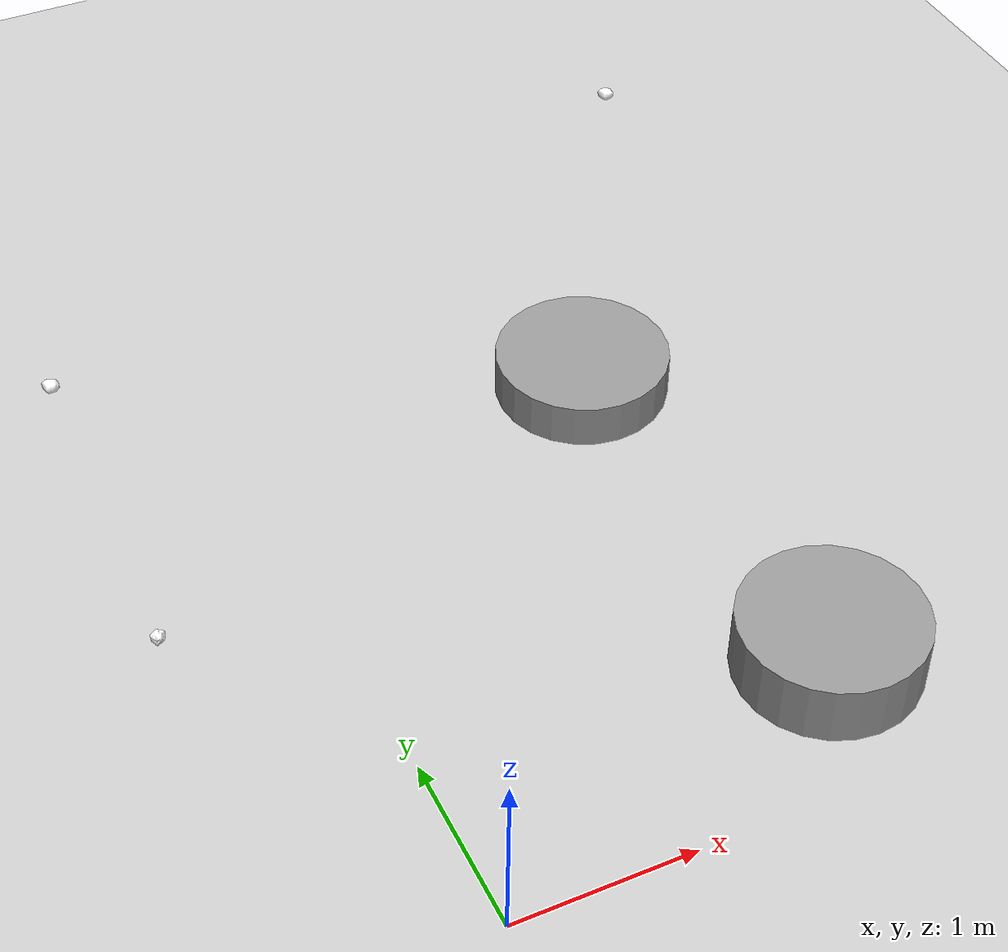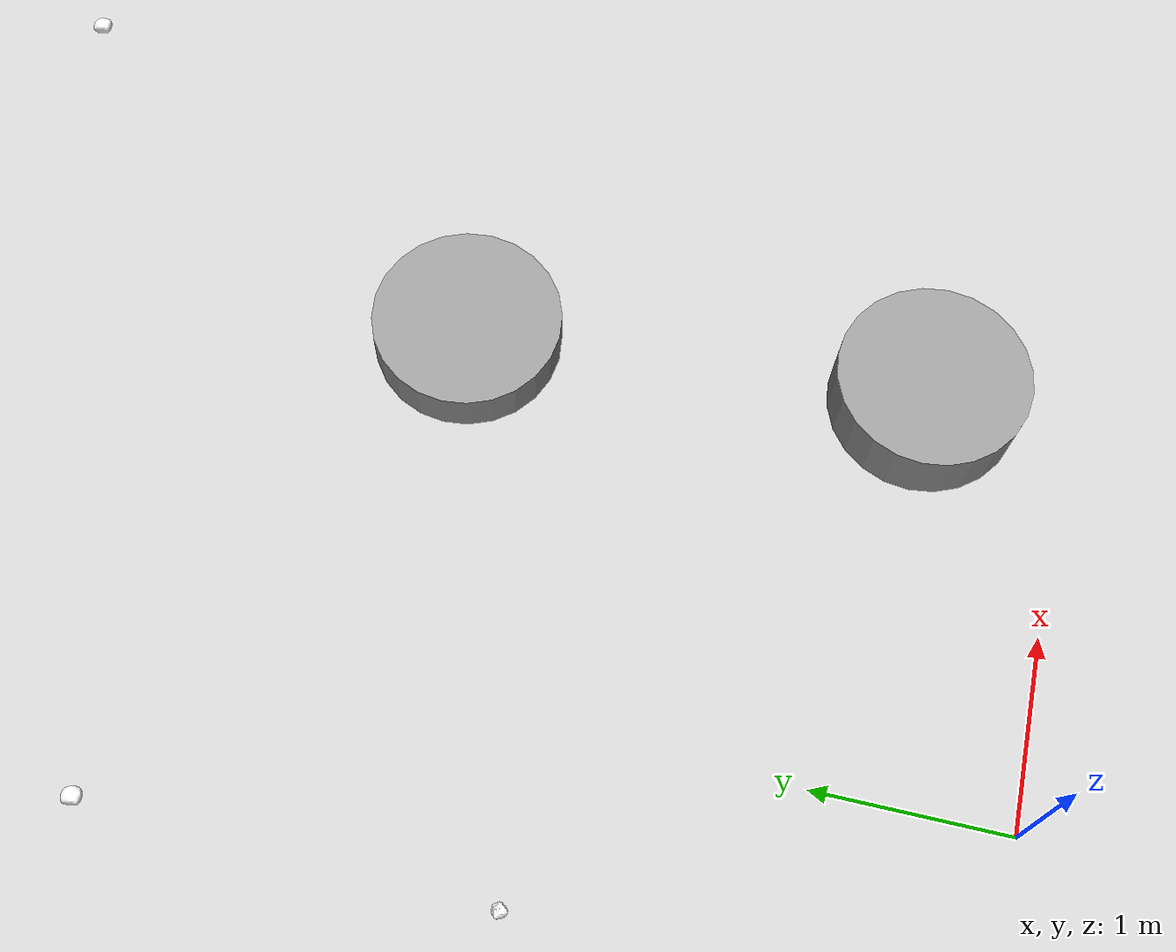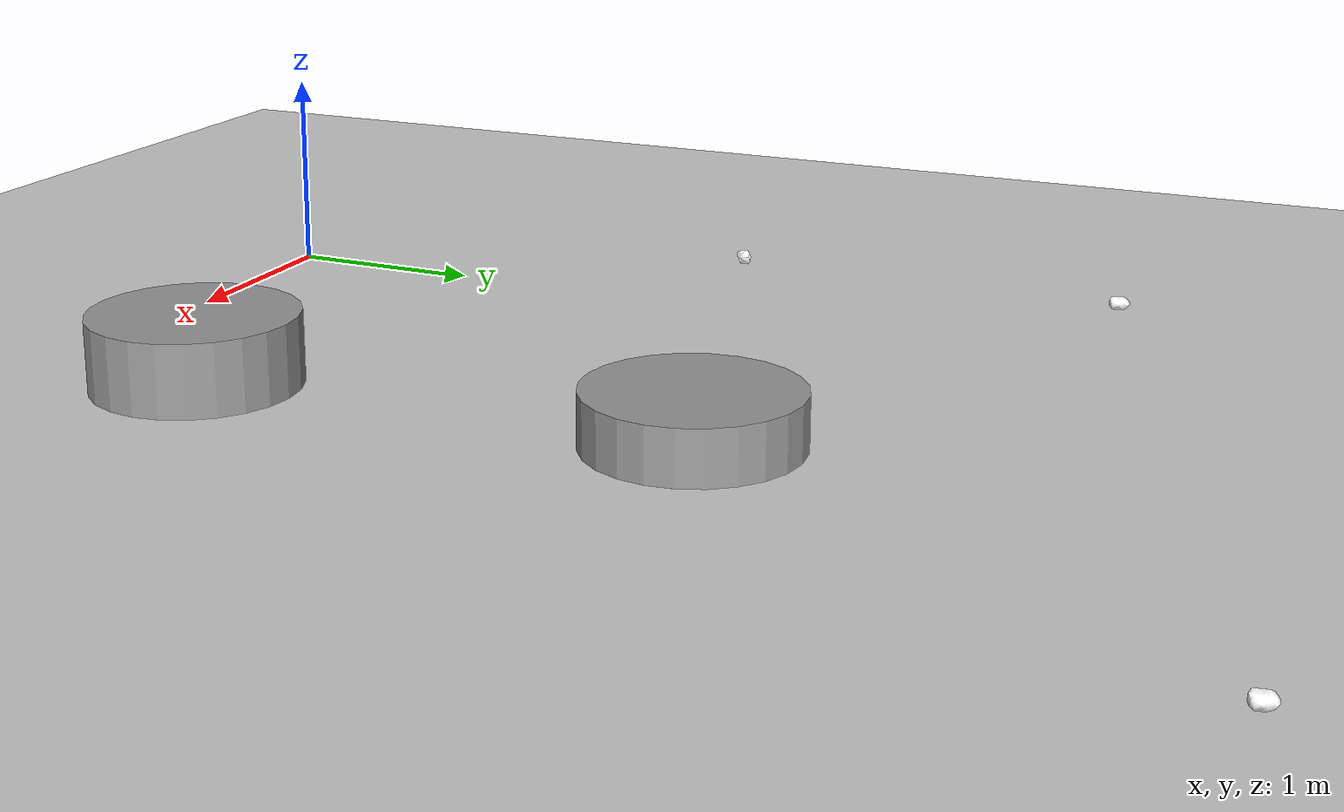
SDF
<sdf version="1.7">
 <world name="default">
  <model name="ground_plane">
   <static>1</static>
   <link name="link">
    <collision name="collision">
     <geometry><plane><normal>0 0 1</normal><size>100 100</size></plane></geometry>
     <surface><friction><ode><mu>100</mu><mu2>50</mu2></ode></friction></surface>
    </collision>
    <visual name="visual">
     <cast_shadows>0</cast_shadows>
     <geometry><plane><normal>0 0 1</normal><size>100 100</size></plane></geometry>
     <material>
      <script><uri>file://media/materials/scripts/gazebo.material</uri><name>Gazebo/Grey</name></script>
     </material>
    </visual>
   </link>
  </model>
  <model name="unit_cylinder">
   <pose>2.14694 0.738304 0.175627 0 -0 2.7e-05</pose>
   <link name="link">
    <inertial>
     <mass>1</mass>
     <inertia><ixx>0.145833</ixx><ixy>0</ixy><ixz>0</ixz><iyy>0.145833</iyy><iyz>0</iyz><izz>0.125</izz></inertia>
    </inertial>
    <collision name="collision">
     <geometry><cylinder><radius>0.5</radius><length>0.351255</length></cylinder></geometry>
    </collision>
    <visual name="visual">
     <geometry><cylinder><radius>0.5</radius><length>0.351255</length></cylinder></geometry>
     <material>
      <script><name>Gazebo/Grey</name><uri>file://media/materials/scripts/gazebo.material</uri></script>
     </material>
    </visual>
   </link>
  </model>
  <model name="unit_cylinder_0">
   <pose>1.98294 3.15713 0.130238 0 0 -0.02272</pose>
   <link name="link">
    <inertial>
     <mass>1</mass>
     <inertia><ixx>0.145833</ixx><ixy>0</ixy><ixz>0</ixz><iyy>0.145833</iyy><iyz>0</iyz><izz>0.125</izz></inertia>
    </inertial>
    <collision name="collision">
     <geometry><cylinder><radius>0.5</radius><length>0.260477</length></cylinder></geometry>
    </collision>
    <visual name="visual">
     <geometry><cylinder><radius>0.5</radius><length>0.260477</length></cylinder></geometry>
     <material>
      <script><name>Gazebo/Grey</name><uri>file://media/materials/scripts/gazebo.material</uri></script>
     </material>
    </visual>
   </link>
  </model>
  <model name="my_rock03">
   <link name="link">
    <pose>0 0 0.080854 0 -0 0</pose>
    <inertial>
     <mass>0.3</mass>
     <inertia><ixx>1</ixx><ixy>0</ixy><ixz>0</ixz><iyy>1</iyy><iyz>0</iyz><izz>1</izz></inertia>
    </inertial>
    <velocity_decay><linear>0</linear><angular>0</angular></velocity_decay>
    <visual name="visual">
     <pose>0 0 0.031 0 -0 0</pose>
     <geometry><mesh><uri>model://my_rock03/meshes/model.dae</uri><scale>0.06 0.06 0.06</scale></mesh></geometry>
     <material>
      <script>
       <uri>model://my_rock03/materials/scripts</uri>
       <uri>model://my_rock03/materials/textures</uri>
       <name>myrock/Diffuse</name>
      </script>
      <shader type="pixel"><normal_map>__default__</normal_map></shader>
      <ambient>1 1 1 1</ambient>
      <diffuse>1 1 1 1</diffuse>
      <specular>0 0 0 1</specular>
      <emissive>0 0 0 1</emissive>
     </material>
    </visual>
    <collision name="collision">
     <pose>0 0 0.03 0 -0 0</pose>
     <geometry>
      <mesh>
       <uri>/home/roboworks/CIRE2022/rocks_models/my_rock03/meshes/model.dae</uri>
       <scale>0.06 0.06 0.06</scale>
      </mesh>
     </geometry>
     <surface>
      <friction>
       <ode><mu>1</mu><mu2>1</mu2><fdir1>0 0 0</fdir1><slip1>0</slip1><slip2>0</slip2></ode>
       <torsional>
        <coefficient>1</coefficient>
        <patch_radius>0</patch_radius>
        <surface_radius>0</surface_radius>
        <use_patch_radius>1</use_patch_radius>
        <ode><slip>0</slip></ode>
       </torsional>
      </friction>
      <bounce><restitution_coefficient>0.2</restitution_coefficient><threshold>0</threshold></bounce>
      <contact>
       <collide_without_contact>0</collide_without_contact>
       <collide_without_contact_bitmask>1</collide_without_contact_bitmask>
       <collide_bitmask>1</collide_bitmask>
       <ode>
        <soft_cfm>0</soft_cfm>
        <soft_erp>0.2</soft_erp>
        <kp>1e+13</kp>
        <kd>1</kd>
        <max_vel>10</max_vel>
        <min_depth>0</min_depth>
       </ode>
       <bullet>
        <split_impulse>1</split_impulse>
        <split_impulse_penetration_threshold>-0.01</split_impulse_penetration_threshold>
        <soft_cfm>0</soft_cfm>
        <soft_erp>0.2</soft_erp>
        <kp>1e+13</kp>
        <kd>1</kd>
       </bullet>
      </contact>
     </surface>
    </collision>
   </link>
   <static>0</static>
   <pose>-0.852658 2.2974 -0.07134 -0.025555 -0.225979 0.000402</pose>
  </model>
  <model name="my_rock02_clone_5">
   <link name="link">
    <inertial>
     <mass>0.3</mass>
     <inertia><ixx>1</ixx><ixy>0</ixy><ixz>0</ixz><iyy>1</iyy><iyz>0</iyz><izz>1</izz></inertia>
    </inertial>
    <velocity_decay><linear>0</linear><angular>0</angular></velocity_decay>
    <visual name="visual">
     <pose>0 0 0.031 0 -0 0</pose>
     <geometry><mesh><uri>model://my_rock02/meshes/model.dae</uri><scale>0.06 0.06 0.06</scale></mesh></geometry>
     <material>
      <script>
       <uri>model://my_rock02/materials/scripts</uri>
       <uri>model://my_rock02/materials/textures</uri>
       <name>myrock/Diffuse</name>
      </script>
      <shader type="pixel"><normal_map>__default__</normal_map></shader>
      <ambient>1 1 1 1</ambient>
      <diffuse>1 1 1 1</diffuse>
      <specular>0 0 0 1</specular>
      <emissive>0 0 0 1</emissive>
     </material>
    </visual>
    <collision name="collision">
     <pose>-0 0 0.03 0 -0 0</pose>
     <geometry>
      <mesh>
       <uri>/home/roboworks/CIRE2022/rocks_models/my_rock02/meshes/model.dae</uri>
       <scale>0.06 0.06 0.06</scale>
      </mesh>
     </geometry>
     <surface>
      <friction>
       <ode><mu>1</mu><mu2>1</mu2><fdir1>0 0 0</fdir1><slip1>0</slip1><slip2>0</slip2></ode>
       <torsional>
        <coefficient>1</coefficient>
        <patch_radius>0</patch_radius>
        <surface_radius>0</surface_radius>
        <use_patch_radius>1</use_patch_radius>
        <ode><slip>0</slip></ode>
       </torsional>
      </friction>
      <bounce><restitution_coefficient>1e-05</restitution_coefficient><threshold>0</threshold></bounce>
      <contact>
       <collide_without_contact>0</collide_without_contact>
       <collide_without_contact_bitmask>1</collide_without_contact_bitmask>
       <collide_bitmask>1</collide_bitmask>
       <ode>
        <soft_cfm>0</soft_cfm>
        <soft_erp>0.2</soft_erp>
        <kp>1e+13</kp>
        <kd>1</kd>
        <max_vel>10</max_vel>
        <min_depth>0</min_depth>
       </ode>
       <bullet>
        <split_impulse>1</split_impulse>
        <split_impulse_penetration_threshold>-0.01</split_impulse_penetration_threshold>
        <soft_cfm>0</soft_cfm>
        <soft_erp>0.2</soft_erp>
        <kp>1e+13</kp>
        <kd>1</kd>
       </bullet>
      </contact>
     </surface>
    </collision>
   </link>
   <static>0</static>
   <pose>-0.814213 4.40966 0.003353 0.028266 0.008554 -0.001202</pose>
  </model>
  <model name="my_rock02_clone_5_clone">
   <link name="link">
    <inertial>
     <mass>0.3</mass>
     <inertia><ixx>1</ixx><ixy>0</ixy><ixz>0</ixz><iyy>1</iyy><iyz>0</iyz><izz>1</izz></inertia>
    </inertial>
    <velocity_decay><linear>0</linear><angular>0</angular></velocity_decay>
    <visual name="visual">
     <pose>0 0 0.031 0 -0 0</pose>
     <geometry><mesh><uri>model://my_rock02/meshes/model.dae</uri><scale>0.06 0.06 0.06</scale></mesh></geometry>
     <material>
      <script>
       <uri>model://my_rock02/materials/scripts</uri>
       <uri>model://my_rock02/materials/textures</uri>
       <name>myrock/Diffuse</name>
      </script>
      <shader type="pixel"><normal_map>__default__</normal_map></shader>
      <ambient>1 1 1 1</ambient>
      <diffuse>1 1 1 1</diffuse>
      <specular>0 0 0 1</specular>
      <emissive>0 0 0 1</emissive>
     </material>
    </visual>
    <collision name="collision">
     <pose>-0 0 0.03 0 -0 0</pose>
     <geometry>
      <mesh>
       <uri>/home/roboworks/CIRE2022/rocks_models/my_rock02/meshes/model.dae</uri>
       <scale>0.06 0.06 0.06</scale>
      </mesh>
     </geometry>
     <surface>
      <friction>
       <ode><mu>1</mu><mu2>1</mu2><fdir1>0 0 0</fdir1><slip1>0</slip1><slip2>0</slip2></ode>
       <torsional>
        <coefficient>1</coefficient>
        <patch_radius>0</patch_radius>
        <surface_radius>0</surface_radius>
        <use_patch_radius>1</use_patch_radius>
        <ode><slip>0</slip></ode>
       </torsional>
      </friction>
      <bounce><restitution_coefficient>1e-05</restitution_coefficient><threshold>0</threshold></bounce>
      <contact>
       <collide_without_contact>0</collide_without_contact>
       <collide_without_contact_bitmask>1</collide_without_contact_bitmask>
       <collide_bitmask>1</collide_bitmask>
       <ode>
        <soft_cfm>0</soft_cfm>
        <soft_erp>0.2</soft_erp>
        <kp>1e+13</kp>
        <kd>1</kd>
        <max_vel>10</max_vel>
        <min_depth>0</min_depth>
       </ode>
       <bullet>
        <split_impulse>1</split_impulse>
        <split_impulse_penetration_threshold>-0.01</split_impulse_penetration_threshold>
        <soft_cfm>0</soft_cfm>
        <soft_erp>0.2</soft_erp>
        <kp>1e+13</kp>
        <kd>1</kd>
       </bullet>
      </contact>
     </surface>
    </collision>
   </link>
   <static>0</static>
   <pose>3.48001 5.72811 0.003354 0.028186 0.008522 -0.001203</pose>
  </model>
 </world>
</sdf>
